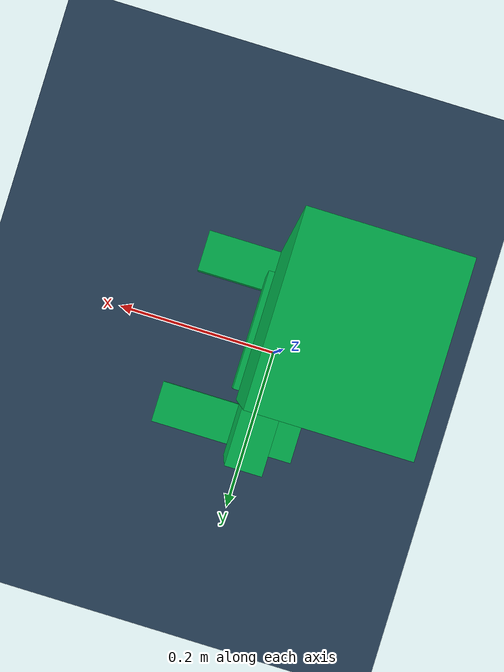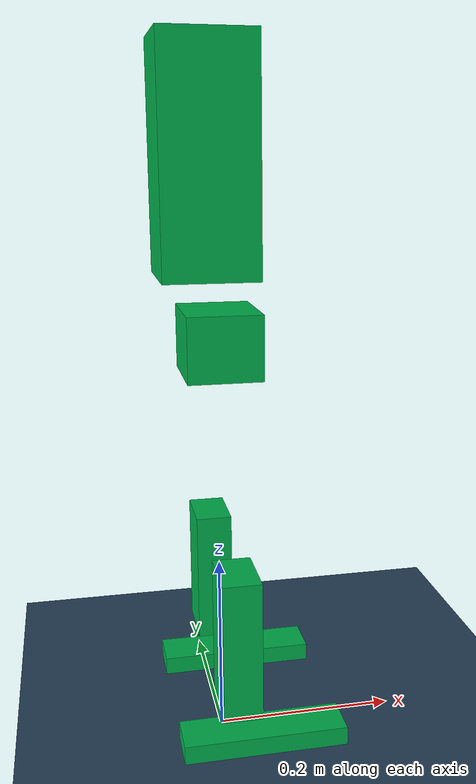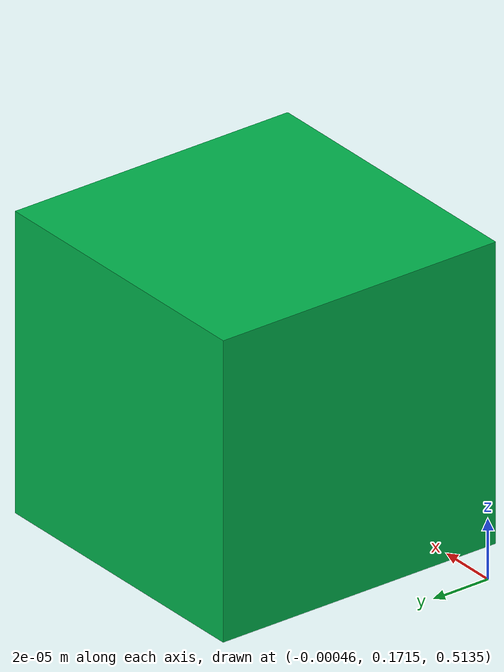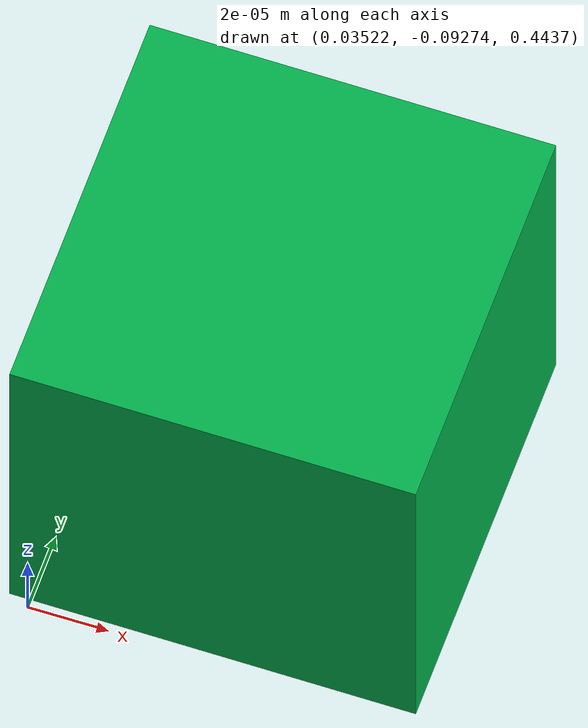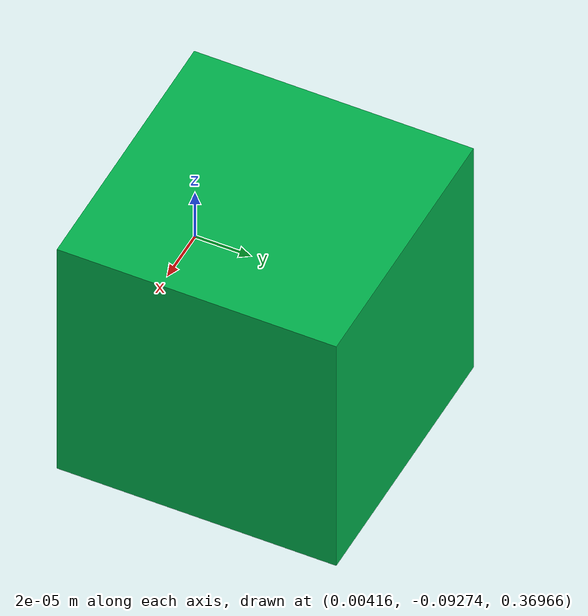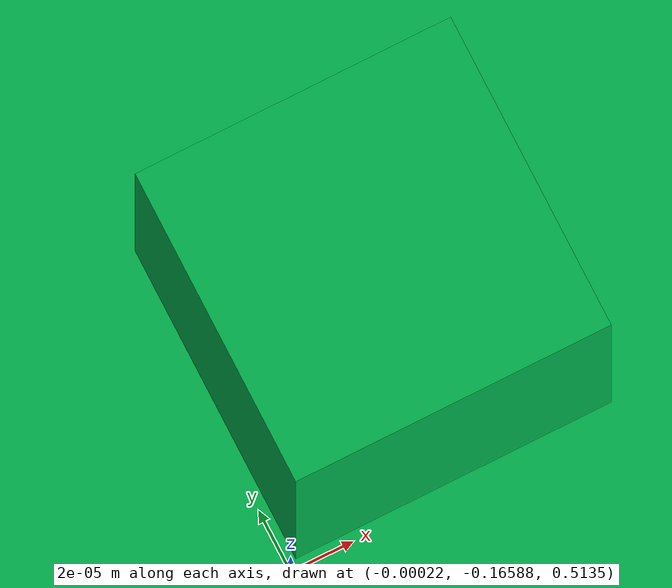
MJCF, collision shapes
<mujoco>
  <option timestep="0.001" iterations='50' solver='PGS' gravity='0 0 -9.81' />
  <compiler angle="radian" autolimits="true" meshdir="../meshes" />
  <default>
    <joint limited="true" armature="0.05" damping="0.01"/>
    <motor ctrllimited="true" ctrlrange="-100 100"/>
    <equality solref="0.005 1"/>
  </default>
  <asset>
    <mesh name="base_link" file="base_link.STL" />
    <mesh name="loin_yaw_Link" file="loin_yaw_Link.STL" />
    <mesh name="leg_l1_link" file="leg_l1_link.STL" />
    <mesh name="leg_l2_link" file="leg_l2_link.STL" />
    <mesh name="leg_l3_link" file="leg_l3_link.STL" />
    <mesh name="leg_l4_link" file="leg_l4_link.STL" />
    <mesh name="leg_l5_link" file="leg_l5_link.STL" />
    <mesh name="leg_r1_link" file="leg_r1_link.STL" />
    <mesh name="leg_r2_link" file="leg_r2_link.STL" />
    <mesh name="leg_r3_link" file="leg_r3_link.STL" />
    <mesh name="leg_r4_link" file="leg_r4_link.STL" />
    <mesh name="leg_r5_link" file="leg_r5_link.STL" />
    <mesh name="l_shoulder_pitch_link" file="l_shoulder_pitch_link.STL" />
    <mesh name="l_shoulder_roll_link" file="l_shoulder_roll_link.STL" />
    <mesh name="l_shoulder_yaw_link" file="l_shoulder_yaw_link.STL" />
    <mesh name="l_arm_pitch_link" file="l_arm_pitch_link.STL" />
    <mesh name="r_shoulder_pitch_link" file="r_shoulder_pitch_link.STL" />
    <mesh name="r_shoulder_roll_link" file="r_shoulder_roll_link.STL" />
    <mesh name="r_shoulder_yaw_link" file="r_shoulder_yaw_link.STL" />
    <mesh name="r_arm_pitch_link" file="r_arm_pitch_link.STL" />
    <texture type="skybox" builtin="gradient" rgb1="0.3 0.5 0.7" rgb2="0 0 0" width="512" height="3072" />
    <texture type="2d" name="groundplane" builtin="checker" mark="edge" rgb1="0.2 0.3 0.4" rgb2="0.1 0.2 0.3" markrgb="0.8 0.8 0.8" width="300" height="300" />
    <material name="groundplane" texture="groundplane" texuniform="true" texrepeat="5 5" reflectance="0.2" />
  </asset>
  <worldbody>
    <body name="base_link" pos="0.0 0.0 0.75" quat="1.0 0.0 0.0 0.0">
      <inertial mass="4.7679" pos="0.00377207 0.00223131 -0.115526" quat="0.999479912032634 -0.0305585973104418 0.0102985990935879 -0.0001281809887183" diaginertia="0.0503512 0.0321506 0.0282011" />
      <joint name="dummy_to_base_link" type="free" pos="0.0 0.0 0.0" axis="0.0 0.0 1.0" range="0.0 0.0" damping="0.0" stiffness="0.0" armature="0.0" frictionloss="0.0" />
      <geom type="mesh" mesh="base_link" contype="0" conaffinity="0" pos="0.0 0.0 0.0" quat="1.0 0.0 0.0 0.0" rgba="0.792157 0.819608 0.933333 1.0" />
      <geom rgba="0 0.7 0.3 0.1" type="box" pos="-0.01 0.0 -0.11" quat="1.0 0.0 0.0 0.0" size="0.05 0.06 0.12" contype="1" conaffinity="1" friction="1.0 0.005 0.0001" />
      <geom rgba="0 0.7 0.3 0.1" type="box" pos="0.0 0.0 0.0" quat="1.0 0.0 0.0 0.0" size="0.0075 0.0075 0.002" contype="0" conaffinity="0" friction="1.0 0.005 0.0001" />
      <body name="loin_yaw_Link" pos="0.0042148 0.0028621 -0.25475" quat="1.0 0.0 0.0 0.0">
        <inertial mass="1.2992" pos="-1.9e-05 0.0 -0.041281" quat="0.7056683488993905 0.7056683488993905 -0.045079722288498 0.045079722288498" diaginertia="0.00246554 0.00237046 0.001435" />
        <joint name="loin_yaw_joint" type="hinge" pos="0.0 0.0 0.0" axis="0.0 0.0 1.0" range="-0.45 0.45" damping="0.0" stiffness="0.0" armature="0.05" frictionloss="0.175" />
        <geom type="mesh" mesh="loin_yaw_Link" contype="0" conaffinity="0" pos="0.0 0.0 0.0" quat="1.0 0.0 0.0 0.0" rgba="0.854902 0.67451 0.541176 1.0" />
        <geom rgba="0 0.7 0.3 0.1" type="box" pos="0.0 0.0 -0.045" quat="1.0 0.0 0.0 0.0" size="0.04 0.05 0.035" contype="1" conaffinity="1" friction="1.0 0.005 0.0001" />
        <body name="leg_l1_link" pos="0.0 0.05355 -0.0515" quat="1.0 0.0 0.0 0.0">
          <inertial mass="0.5189" pos="0.003422 0.041688 -7.6e-05" quat="0.477051207758947 0.1615360703500239 -0.7244793155155197 0.4705932049464442" diaginertia="0.000309584 0.000307706 0.00030371" />
          <joint name="leg_l1_joint" type="hinge" pos="0.0 0.0 0.0" axis="0.0 1.0 0.0" range="-1.05 1.05" damping="0.0" stiffness="0.0" armature="0.05" frictionloss="0.075" />
          <geom type="mesh" mesh="leg_l1_link" contype="0" conaffinity="0" pos="0.0 0.0 0.0" quat="1.0 0.0 0.0 0.0" rgba="0.854902 0.67451 0.541176 1.0" />
          <geom rgba="0 0.7 0.3 0.1" type="box" pos="0.0 0.0 0.0" quat="1.0 0.0 0.0 0.0" size="5e-05 5e-05 5e-05" contype="1" conaffinity="1" friction="1.0 0.005 0.0001" />
          <body name="leg_l2_link" pos="0.03105 0.042 0.0" quat="1.0 0.0 0.0 0.0">
            <inertial mass="0.1429" pos="-0.029211 1.6e-05 -0.031591" quat="0.5978653600860446 0.3775672274035236 0.3775672274035236 0.5978653600860446" diaginertia="0.000254 0.000173808 0.000153192" />
            <joint name="leg_l2_joint" type="hinge" pos="0.0 0.0 0.0" axis="1.0 0.0 0.0" range="-0.52 0.785" damping="0.0" stiffness="0.0" armature="0.05" frictionloss="0.075" />
            <geom type="mesh" mesh="leg_l2_link" contype="0" conaffinity="0" pos="0.0 0.0 0.0" quat="1.0 0.0 0.0 0.0" rgba="1.0 1.0 1.0 1.0" />
            <geom rgba="0 0.7 0.3 0.1" type="box" pos="0.0 0.0 0.0" quat="1.0 0.0 0.0 0.0" size="5e-05 5e-05 5e-05" contype="1" conaffinity="1" friction="1.0 0.005 0.0001" />
            <body name="leg_l3_link" pos="-0.03105 0.0 -0.07405" quat="1.0 0.0 0.0 0.0">
              <inertial mass="0.9821" pos="-8.2e-05 0.001688 -0.070672" quat="0.998709467215822 0.0207181096923369 -0.0032466115188283 0.0462560216394716" diaginertia="0.00253617 0.00252125 0.00057658" />
              <joint name="leg_l3_joint" type="hinge" pos="0.0 0.0 0.0" axis="0.0 0.0 1.0" range="-0.52 0.785" damping="0.0" stiffness="0.0" armature="0.05" frictionloss="0.075" />
              <geom type="mesh" mesh="leg_l3_link" contype="0" conaffinity="0" pos="0.0 0.0 0.0" quat="1.0 0.0 0.0 0.0" rgba="0.898039 0.917647 0.929412 1.0" />
              <geom rgba="0 0.7 0.3 0.1" type="box" pos="0.0 0.0 0.0" quat="1.0 0.0 0.0 0.0" size="5e-05 5e-05 5e-05" contype="1" conaffinity="1" friction="1.0 0.005 0.0001" />
              <body name="leg_l4_link" pos="0.0 0.03105 -0.11705" quat="1.0 0.0 0.0 0.0">
                <inertial mass="0.5069" pos="0.000193 -0.033837 -0.078429" quat="0.999871027280792 0.0064783001767559 5.1954201417534585e-05 -0.0146955004009566" diaginertia="0.000963118 0.00082696 0.000363922" />
                <joint name="leg_l4_joint" type="hinge" pos="0.0 0.0 0.0" axis="0.0 1.0 0.0" range="-0.3 2.3562" damping="0.0" stiffness="0.0" armature="0.05" frictionloss="0.075" />
                <geom type="mesh" mesh="leg_l4_link" contype="0" conaffinity="0" pos="0.0 0.0 0.0" quat="1.0 0.0 0.0 0.0" rgba="0.854902 0.67451 0.541176 1.0" />
                <geom rgba="0 0.7 0.3 0.1" type="box" pos="0.0 -0.03 -0.1" quat="1.0 0.0 0.0 0.0" size="0.0205 0.035 0.075" contype="1" conaffinity="1" friction="1.0 0.005 0.0001" />
                <body name="leg_l5_link" pos="-1.6188e-05 -0.01955 -0.20287" quat="1.0 0.0 0.0 0.0">
                  <inertial mass="0.2472" pos="0.00260998 -0.00912783 0.0166971" quat="0.3071679044288681 0.6259468052451321 0.6777817891173791 0.2333459273975761" diaginertia="0.0012183 0.000880174 0.000430339" />
                  <joint name="leg_l5_joint" type="hinge" pos="0.0 0.0 0.0" axis="0.0 1.0 0.0" range="-1.047 0.3" damping="0.0" stiffness="0.0" armature="0.05" frictionloss="0.075" />
                  <geom type="mesh" mesh="leg_l5_link" contype="0" conaffinity="0" pos="0.0 0.0 0.0" quat="1.0 0.0 0.0 0.0" rgba="0.854902 0.67451 0.541176 1.0" />
                  <geom rgba="0 0.7 0.3 0.1" type="box" pos="0.027 -0.012 -0.012" quat="1.0 0.0 0.0 0.0" size="0.0875 0.025 0.01" contype="1" conaffinity="1" friction=".1 0.005 0.0001" />
                </body>
              </body>
            </body>
          </body>
        </body>
        <body name="leg_r1_link" pos="0.0 -0.05355 -0.0515" quat="1.0 0.0 0.0 0.0">
          <inertial mass="0.5189" pos="0.00342 -0.041705 -8.4e-05" quat="0.1615360703500239 0.477051207758947 -0.4705932049464442 0.7244793155155197" diaginertia="0.000309584 0.000307706 0.00030371" />
          <joint name="leg_r1_joint" type="hinge" pos="0.0 0.0 0.0" axis="0.0 1.0 0.0" range="-1.05 1.05" damping="0.0" stiffness="0.0" armature="0.05" frictionloss="0.075" />
          <geom type="mesh" mesh="leg_r1_link" contype="0" conaffinity="0" pos="0.0 0.0 0.0" quat="1.0 0.0 0.0 0.0" rgba="0.898039 0.917647 0.929412 1.0" />
          <geom rgba="0 0.7 0.3 0.1" type="box" pos="0.0 0.0 0.0" quat="1.0 0.0 0.0 0.0" size="5e-05 5e-05 5e-05" contype="1" conaffinity="1" friction="1.0 0.005 0.0001" />
          <body name="leg_r2_link" pos="0.03105 -0.042 0.0" quat="1.0 0.0 0.0 0.0">
            <inertial mass="0.1429" pos="-0.029211 1.6e-05 -0.031544" quat="0.5978653600860446 0.3775672274035236 0.3775672274035236 0.5978653600860446" diaginertia="0.000254 0.000173808 0.000153192" />
            <joint name="leg_r2_joint" type="hinge" pos="0.0 0.0 0.0" axis="1.0 0.0 0.0" range="-0.785 0.52" damping="0.0" stiffness="0.0" armature="0.05" frictionloss="0.075" />
            <geom type="mesh" mesh="leg_r2_link" contype="0" conaffinity="0" pos="0.0 0.0 0.0" quat="1.0 0.0 0.0 0.0" rgba="1.0 1.0 1.0 1.0" />
            <geom rgba="0 0.7 0.3 0.1" type="box" pos="0.0 0.0 0.0" quat="1.0 0.0 0.0 0.0" size="5e-05 5e-05 5e-05" contype="1" conaffinity="1" friction="1.0 0.005 0.0001" />
            <body name="leg_r3_link" pos="-0.03105 0.0 -0.07405" quat="1.0 0.0 0.0 0.0">
              <inertial mass="0.9821" pos="0.00017 -0.001688 -0.070673" quat="0.9994190761366344 -0.0208749015902685 0.0007236900551313 -0.0269300020515515" diaginertia="0.00253606 0.00252134 0.000576607" />
              <joint name="leg_r3_joint" type="hinge" pos="0.0 0.0 0.0" axis="0.0 0.0 1.0" range="-0.785 0.52" damping="0.0" stiffness="0.0" armature="0.05" frictionloss="0.075" />
              <geom type="mesh" mesh="leg_r3_link" contype="0" conaffinity="0" pos="0.0 0.0 0.0" quat="1.0 0.0 0.0 0.0" rgba="0.898039 0.917647 0.929412 1.0" />
              <geom rgba="0 0.7 0.3 0.1" type="box" pos="0.0 0.0 0.0" quat="1.0 0.0 0.0 0.0" size="5e-05 5e-05 5e-05" contype="1" conaffinity="1" friction="1.0 0.005 0.0001" />
              <body name="leg_r4_link" pos="0.0 -0.03105 -0.11705" quat="1.0 0.0 0.0 0.0">
                <inertial mass="0.5069" pos="0.000261 0.033885 -0.078429" quat="0.999918265120372 -0.0064927017214882 -0.0007957512109871 0.0109852029126391" diaginertia="0.000963067 0.000827012 0.00036392" />
                <joint name="leg_r4_joint" type="hinge" pos="0.0 0.0 0.0" axis="0.0 1.0 0.0" range="-0.3 2.3562" damping="0.0" stiffness="0.0" armature="0.05" frictionloss="0.075" />
                <geom type="mesh" mesh="leg_r4_link" contype="0" conaffinity="0" pos="0.0 0.0 0.0" quat="1.0 0.0 0.0 0.0" rgba="0.898039 0.917647 0.929412 1.0" />
                <geom rgba="0 0.7 0.3 0.1" type="box" pos="0.0 0.03 -0.1" quat="1.0 0.0 0.0 0.0" size="0.0205 0.035 0.075" contype="1" conaffinity="1" friction="1.0 0.005 0.0001" />
                <body name="leg_r5_link" pos="0.0 0.0196 -0.20286" quat="1.0 0.0 0.0 0.0">
                  <inertial mass="0.2472" pos="0.00260814 0.00912783 0.0166953" quat="0.2333469473324332 0.6777818470212655 0.6259458587209059 0.3071689306704444" diaginertia="0.0012183 0.000880174 0.000430339" />
                  <joint name="leg_r5_joint" type="hinge" pos="0.0 0.0 0.0" axis="0.0 1.0 0.0" range="-1.047 0.3" damping="0.0" stiffness="0.0" armature="0.05" frictionloss="0.075" />
                  <geom type="mesh" mesh="leg_r5_link" contype="0" conaffinity="0" pos="0.0 0.0 0.0" quat="1.0 0.0 0.0 0.0" rgba="0.854902 0.67451 0.541176 1.0" />
                  <geom rgba="0 0.7 0.3 0.1" type="box" pos="0.027 0.012 -0.012" quat="1.0 0.0 0.0 0.0" size="0.0875 0.025 0.01" contype="1" conaffinity="1" friction=".1 0.005 0.0001" />
                </body>
              </body>
            </body>
          </body>
        </body>
      </body>
      <body name="l_shoulder_pitch_link" pos="0.0041156 0.14497 -0.051894" quat="1.0 0.0 0.0 0.0">
        <inertial mass="0.3512" pos="-0.004236 0.046336 -3.3e-05" quat="0.7058572052535572 0.7058572052535572 -0.0420191122185793 -0.0420191122185793" diaginertia="0.000176478 0.000171 0.000142522" />
        <joint name="l_shoulder_pitch_joint" type="hinge" pos="0.0 0.0 0.0" axis="0.0 1.0 0.0" range="-1.047 1.047" damping="0.0" stiffness="0.0" armature="0.05" frictionloss="0.075" />
        <geom type="mesh" mesh="l_shoulder_pitch_link" contype="0" conaffinity="0" pos="0.0 0.0 0.0" quat="1.0 0.0 0.0 0.0" rgba="0.898039 0.917647 0.929412 1.0" />
        <geom rgba="0 0.7 0.3 0.1" type="box" pos="0.0 0.0 0.0" quat="1.0 0.0 0.0 0.0" size="5e-05 5e-05 5e-05" contype="1" conaffinity="1" friction="1.0 0.005 0.0001" />
        <body name="l_shoulder_roll_link" pos="-0.025534 0.048932 0.0" quat="1.0 0.0 0.0 0.0">
          <inertial mass="0.13" pos="0.018883 1.3e-05 -0.044864" quat="0.6686189074651555 -0.2301059681540265 -0.2301059681540265 0.6686189074651555" diaginertia="0.000145 0.000135369 0.000110631" />
          <joint name="l_shoulder_roll_joint" type="hinge" pos="0.0 0.0 0.0" axis="1.0 0.0 0.0" range="-0.1 1.047" damping="0.0" stiffness="0.0" armature="0.05" frictionloss="0.075" />
          <geom type="mesh" mesh="l_shoulder_roll_link" contype="0" conaffinity="0" pos="0.0 0.0 0.0" quat="1.0 0.0 0.0 0.0" rgba="0.854902 0.67451 0.541176 1.0" />
          <geom rgba="0 0.7 0.3 0.1" type="box" pos="0.0 0.0 0.0" quat="1.0 0.0 0.0 0.0" size="5e-05 5e-05 5e-05" contype="1" conaffinity="1" friction="1.0 0.005 0.0001" />
          <body name="l_shoulder_yaw_link" pos="0.021 1.4661e-05 -0.08255" quat="1.0 0.0 0.0 0.0">
            <inertial mass="0.56" pos="0.000139 -0.00084 -0.060567" quat="0.7070566252703498 -0.0084219155365081 0.0084219155365081 0.7070566252703498" diaginertia="0.00110245 0.001076 0.000304547" />
            <joint name="l_shoulder_yaw_joint" type="hinge" pos="0.0 0.0 0.0" axis="0.0 0.0 1.0" range="-0.7 0.7" damping="0.0" stiffness="0.0" armature="0.05" frictionloss="0.055" />
            <geom type="mesh" mesh="l_shoulder_yaw_link" contype="0" conaffinity="0" pos="0.0 0.0 0.0" quat="1.0 0.0 0.0 0.0" rgba="0.854902 0.67451 0.541176 1.0" />
            <geom rgba="0 0.7 0.3 0.1" type="box" pos="0.0 0.0 0.0" quat="1.0 0.0 0.0 0.0" size="5e-05 5e-05 5e-05" contype="1" conaffinity="1" friction="1.0 0.005 0.0001" />
            <body name="l_arm_pitch_link" pos="1.5621e-05 -0.022375 -0.102" quat="0.707 0.0 0.707 0.0">
              <inertial mass="0.0956" pos="0.036507 0.023087 0.0" quat="0.0317832054201099 0.7063921204637146 -0.0317832054201099 0.7063921204637146" diaginertia="0.000133 9.40902e-05 8.29098e-05" />
              <joint name="l_arm_pitch_joint" type="hinge" pos="0.0 0.0 0.0" axis="0.0 1.0 0.0" range="-0.3 3.14" damping="0.0" stiffness="0.0" armature="0.05" frictionloss="0.055" />
              <geom type="mesh" mesh="l_arm_pitch_link" contype="0" conaffinity="0" pos="0.0 0.0 0.0" quat="1.0 0.0 0.0 0.0" rgba="0.854902 0.67451 0.541176 1.0" />
              <geom rgba="0 0.7 0.3 0.1" type="box" pos="0.0 0.0 0.0" quat="1.0 0.0 0.0 0.0" size="5e-05 5e-05 5e-05" contype="1" conaffinity="1" friction="1.0 0.005 0.0001" />
            </body>
          </body>
        </body>
      </body>
      <body name="r_shoulder_pitch_link" pos="0.004314 -0.13925 -0.051894" quat="1.0 0.0 0.0 0.0">
        <inertial mass="0.3512" pos="-0.004171 -0.046342 -3.3e-05" quat="0.7058572052535572 0.7058572052535572 0.0420191122185793 0.0420191122185793" diaginertia="0.000176478 0.000171 0.000142522" />
        <joint name="r_shoulder_pitch_joint" type="hinge" pos="0.0 0.0 0.0" axis="0.0 1.0 0.0" range="-1.047 1.047" damping="0.0" stiffness="0.0" armature="0.05" frictionloss="0.075" />
        <geom type="mesh" mesh="r_shoulder_pitch_link" contype="0" conaffinity="0" pos="0.0 0.0 0.0" quat="1.0 0.0 0.0 0.0" rgba="0.854902 0.67451 0.541176 1.0" />
        <geom rgba="0 0.7 0.3 0.1" type="box" pos="0.0 0.0 0.0" quat="1.0 0.0 0.0 0.0" size="5e-05 5e-05 5e-05" contype="1" conaffinity="1" friction="1.0 0.005 0.0001" />
        <body name="r_shoulder_roll_link" pos="-0.025466 -0.048968 0.0" quat="1.0 0.0 0.0 0.0">
          <inertial mass="0.13" pos="0.018883 1.4e-05 -0.044864" quat="0.6663091459203864 -0.2367110518392526 -0.2367110518392526 0.6663091459203864" diaginertia="0.000145 0.000134758 0.000110242" />
          <joint name="r_shoulder_roll_joint" type="hinge" pos="0.0 0.0 0.0" axis="1.0 0.0 0.0" range="-1.047 0.1" damping="0.0" stiffness="0.0" armature="0.05" frictionloss="0.075" />
          <geom type="mesh" mesh="r_shoulder_roll_link" contype="0" conaffinity="0" pos="0.0 0.0 0.0" quat="1.0 0.0 0.0 0.0" rgba="0.854902 0.67451 0.541176 1.0" />
          <geom rgba="0 0.7 0.3 0.1" type="box" pos="0.0 0.0 0.0" quat="1.0 0.0 0.0 0.0" size="5e-05 5e-05 5e-05" contype="1" conaffinity="1" friction="1.0 0.005 0.0001" />
          <body name="r_shoulder_yaw_link" pos="0.021 1.4661e-05 -0.08255" quat="1.0 0.0 0.0 0.0">
            <inertial mass="0.56" pos="0.000137 0.000855 -0.060609" quat="0.7070566252703498 0.0084219155365081 -0.0084219155365081 0.7070566252703498" diaginertia="0.00110245 0.001076 0.000304547" />
            <joint name="r_shoulder_yaw_joint" type="hinge" pos="0.0 0.0 0.0" axis="0.0 0.0 1.0" range="-0.7 0.7" damping="0.0" stiffness="0.0" armature="0.05" frictionloss="0.055" />
            <geom type="mesh" mesh="r_shoulder_yaw_link" contype="0" conaffinity="0" pos="0.0 0.0 0.0" quat="1.0 0.0 0.0 0.0" rgba="0.854902 0.67451 0.541176 1.0" />
            <geom rgba="0 0.7 0.3 0.1" type="box" pos="0.0 0.0 0.0" quat="1.0 0.0 0.0 0.0" size="5e-05 5e-05 5e-05" contype="1" conaffinity="1" friction="1.0 0.005 0.0001" />
            <body name="r_arm_pitch_link" pos="-1.5621e-05 0.022375 -0.102" quat="0.707 0.0 0.707 0.0">
              <inertial mass="0.0956" pos="0.036539 -0.023035 0.0" quat="-0.0317832054201099 0.7063921204637146 0.0317832054201099 0.7063921204637146" diaginertia="0.000133 9.40902e-05 8.29098e-05" />
              <joint name="r_arm_pitch_joint" type="hinge" pos="0.0 0.0 0.0" axis="0.0 1.0 0.0" range="-0.3 3.14" damping="0.0" stiffness="0.0" armature="0.05" frictionloss="0.055" />
              <geom type="mesh" mesh="r_arm_pitch_link" contype="0" conaffinity="0" pos="0.0 0.0 0.0" quat="1.0 0.0 0.0 0.0" rgba="0.854902 0.67451 0.541176 1.0" />
              <geom rgba="0 0.7 0.3 0.1" type="box" pos="0.0 0.0 0.0" quat="1.0 0.0 0.0 0.0" size="5e-05 5e-05 5e-05" contype="1" conaffinity="1" friction="1.0 0.005 0.0001" />
            </body>
          </body>
        </body>
      </body>
    </body>
    <light pos="0 0 3.5" dir="0 0 -1" directional="true" />
    <geom name="floor" size="0 0 0.05" type="plane" material="groundplane" condim="3" conaffinity="15"  friction=".5 0.005 0.0001"  />
  </worldbody>
  <actuator>
    <motor name="loin_yaw_joint_motor" joint="loin_yaw_joint" ctrlrange="-12.0 12.0" />
    <motor name="leg_l1_joint_motor" joint="leg_l1_joint" ctrlrange="-28.0 28.0" />
    <motor name="leg_l2_joint_motor" joint="leg_l2_joint" ctrlrange="-28.0 28.0" />
    <motor name="leg_l3_joint_motor" joint="leg_l3_joint" ctrlrange="-28.0 28.0" />
    <motor name="leg_l4_joint_motor" joint="leg_l4_joint" ctrlrange="-28.0 28.0" />
    <motor name="leg_l5_joint_motor" joint="leg_l5_joint" ctrlrange="-28.0 28.0" />
    <motor name="leg_r1_joint_motor" joint="leg_r1_joint" ctrlrange="-28.0 28.0" />
    <motor name="leg_r2_joint_motor" joint="leg_r2_joint" ctrlrange="-28.0 28.0" />
    <motor name="leg_r3_joint_motor" joint="leg_r3_joint" ctrlrange="-28.0 28.0" />
    <motor name="leg_r4_joint_motor" joint="leg_r4_joint" ctrlrange="-28.0 28.0" />
    <motor name="leg_r5_joint_motor" joint="leg_r5_joint" ctrlrange="-28.0 28.0" />
    <motor name="l_shoulder_pitch_joint_motor" joint="l_shoulder_pitch_joint" ctrlrange="-28.0 28.0" />
    <motor name="l_shoulder_roll_joint_motor" joint="l_shoulder_roll_joint" ctrlrange="-28.0 28.0" />
    <motor name="l_shoulder_yaw_joint_motor" joint="l_shoulder_yaw_joint" ctrlrange="-28.0 28.0" />
    <motor name="l_arm_pitch_joint_motor" joint="l_arm_pitch_joint" ctrlrange="-28.0 28.0" />
    <motor name="r_shoulder_pitch_joint_motor" joint="r_shoulder_pitch_joint" ctrlrange="-28.0 28.0" />
    <motor name="r_shoulder_roll_joint_motor" joint="r_shoulder_roll_joint" ctrlrange="-28.0 28.0" />
    <motor name="r_shoulder_yaw_joint_motor" joint="r_shoulder_yaw_joint" ctrlrange="-28.0 28.0" />
    <motor name="r_arm_pitch_joint_motor" joint="r_arm_pitch_joint" ctrlrange="-28.0 28.0" />
  </actuator>
  <visual>
    <headlight diffuse="0.6 0.6 0.6" ambient="0.3 0.3 0.3" specular="0 0 0" />
    <rgba haze="0.15 0.25 0.35 1" />
    <global azimuth="160" elevation="-20" />
  </visual>
</mujoco>
